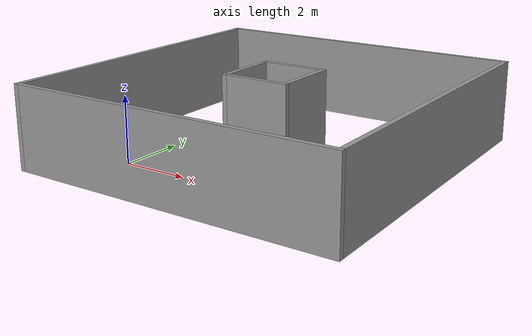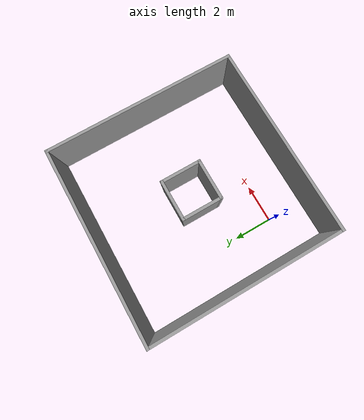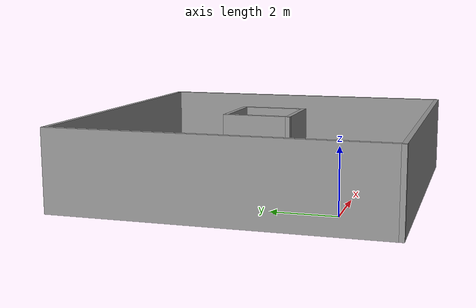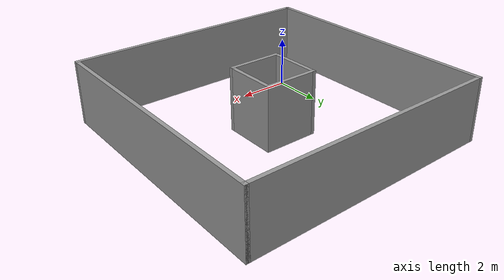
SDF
<?xml version='1.0'?>
<sdf version='1.6'>
  <model name='simple'>
    <pose frame=''>3 3 0 0 -0 0</pose>
    <link name='Wall_10'>
      <collision name='Wall_10_Collision'>
        <geometry>
          <box>
            <size>2.15 0.15 2.5</size>
          </box>
        </geometry>
        <pose frame=''>0 0 1.25 0 -0 0</pose>
      </collision>
      <visual name='Wall_10_Visual'>
        <pose frame=''>0 0 1.25 0 -0 0</pose>
        <geometry>
          <box>
            <size>2.15 0.15 2.5</size>
          </box>
        </geometry>
        <material>
          <script>
            <uri>file://media/materials/scripts/gazebo.material</uri>
            <name>Gazebo/Grey</name>
          </script>
          <ambient>1 1 1 1</ambient>
        </material>
        <meta>
          <layer>0</layer>
        </meta>
      </visual>
      <pose frame=''>-1 -0 0 0 -0 1.5708</pose>
    </link>
    <link name='Wall_11'>
      <collision name='Wall_11_Collision'>
        <geometry>
          <box>
            <size>2.15 0.15 2.5</size>
          </box>
        </geometry>
        <pose frame=''>0 0 1.25 0 -0 0</pose>
      </collision>
      <visual name='Wall_11_Visual'>
        <pose frame=''>0 0 1.25 0 -0 0</pose>
        <geometry>
          <box>
            <size>2.15 0.15 2.5</size>
          </box>
        </geometry>
        <material>
          <script>
            <uri>file://media/materials/scripts/gazebo.material</uri>
            <name>Gazebo/Grey</name>
          </script>
          <ambient>1 1 1 1</ambient>
        </material>
        <meta>
          <layer>0</layer>
        </meta>
      </visual>
      <pose frame=''>-0 1 0 0 -0 0</pose>
    </link>
    <link name='Wall_12'>
      <collision name='Wall_12_Collision'>
        <geometry>
          <box>
            <size>2.15 0.15 2.5</size>
          </box>
        </geometry>
        <pose frame=''>0 0 1.25 0 -0 0</pose>
      </collision>
      <visual name='Wall_12_Visual'>
        <pose frame=''>0 0 1.25 0 -0 0</pose>
        <geometry>
          <box>
            <size>2.15 0.15 2.5</size>
          </box>
        </geometry>
        <material>
          <script>
            <uri>file://media/materials/scripts/gazebo.material</uri>
            <name>Gazebo/Grey</name>
          </script>
          <ambient>1 1 1 1</ambient>
        </material>
        <meta>
          <layer>0</layer>
        </meta>
      </visual>
      <pose frame=''>1 -0 0 0 -0 -1.5708</pose>
    </link>
    <link name='Wall_13'>
      <collision name='Wall_13_Collision'>
        <geometry>
          <box>
            <size>2.15 0.15 2.5</size>
          </box>
        </geometry>
        <pose frame=''>0 0 1.25 0 -0 0</pose>
      </collision>
      <visual name='Wall_13_Visual'>
        <pose frame=''>0 0 1.25 0 -0 0</pose>
        <geometry>
          <box>
            <size>2.15 0.15 2.5</size>
          </box>
        </geometry>
        <material>
          <script>
            <uri>file://media/materials/scripts/gazebo.material</uri>
            <name>Gazebo/Grey</name>
          </script>
          <ambient>1 1 1 1</ambient>
        </material>
        <meta>
          <layer>0</layer>
        </meta>
      </visual>
      <pose frame=''>-0 -1 0 0 -0 3.14159</pose>
    </link>
    <link name='Wall_5'>
      <collision name='Wall_5_Collision'>
        <geometry>
          <box>
            <size>10.15 0.15 2.5</size>
          </box>
        </geometry>
        <pose frame=''>0 0 1.25 0 -0 0</pose>
      </collision>
      <visual name='Wall_5_Visual'>
        <pose frame=''>0 0 1.25 0 -0 0</pose>
        <geometry>
          <box>
            <size>10.15 0.15 2.5</size>
          </box>
        </geometry>
        <material>
          <script>
            <uri>file://media/materials/scripts/gazebo.material</uri>
            <name>Gazebo/Grey</name>
          </script>
          <ambient>1 1 1 1</ambient>
        </material>
        <meta>
          <layer>0</layer>
        </meta>
      </visual>
      <pose frame=''>-5 -0 0 0 -0 1.5708</pose>
    </link>
    <link name='Wall_6'>
      <collision name='Wall_6_Collision'>
        <geometry>
          <box>
            <size>10.15 0.15 2.5</size>
          </box>
        </geometry>
        <pose frame=''>0 0 1.25 0 -0 0</pose>
      </collision>
      <visual name='Wall_6_Visual'>
        <pose frame=''>0 0 1.25 0 -0 0</pose>
        <geometry>
          <box>
            <size>10.15 0.15 2.5</size>
          </box>
        </geometry>
        <material>
          <script>
            <uri>file://media/materials/scripts/gazebo.material</uri>
            <name>Gazebo/Grey</name>
          </script>
          <ambient>1 1 1 1</ambient>
        </material>
        <meta>
          <layer>0</layer>
        </meta>
      </visual>
      <pose frame=''>-0 5 0 0 -0 0</pose>
    </link>
    <link name='Wall_7'>
      <collision name='Wall_7_Collision'>
        <geometry>
          <box>
            <size>10.15 0.15 2.5</size>
          </box>
        </geometry>
        <pose frame=''>0 0 1.25 0 -0 0</pose>
      </collision>
      <visual name='Wall_7_Visual'>
        <pose frame=''>0 0 1.25 0 -0 0</pose>
        <geometry>
          <box>
            <size>10.15 0.15 2.5</size>
          </box>
        </geometry>
        <material>
          <script>
            <uri>file://media/materials/scripts/gazebo.material</uri>
            <name>Gazebo/Grey</name>
          </script>
          <ambient>1 1 1 1</ambient>
        </material>
        <meta>
          <layer>0</layer>
        </meta>
      </visual>
      <pose frame=''>5 -0 0 0 -0 -1.5708</pose>
    </link>
    <link name='Wall_8'>
      <collision name='Wall_8_Collision'>
        <geometry>
          <box>
            <size>10.15 0.15 2.5</size>
          </box>
        </geometry>
        <pose frame=''>0 0 1.25 0 -0 0</pose>
      </collision>
      <visual name='Wall_8_Visual'>
        <pose frame=''>0 0 1.25 0 -0 0</pose>
        <geometry>
          <box>
            <size>10.15 0.15 2.5</size>
          </box>
        </geometry>
        <material>
          <script>
            <uri>file://media/materials/scripts/gazebo.material</uri>
            <name>Gazebo/Grey</name>
          </script>
          <ambient>1 1 1 1</ambient>
        </material>
        <meta>
          <layer>0</layer>
        </meta>
      </visual>
      <pose frame=''>-0 -5 0 0 -0 3.14159</pose>
    </link>
    <static>1</static>
  </model>
</sdf>
